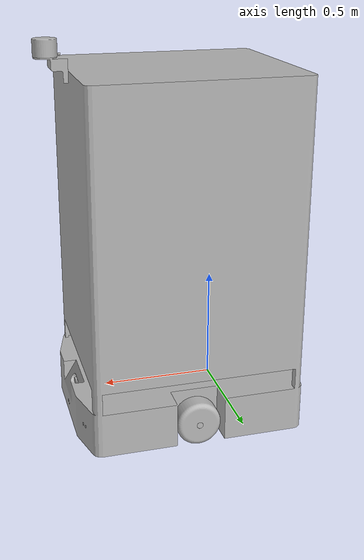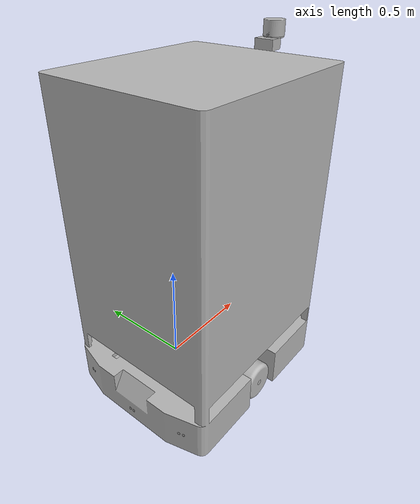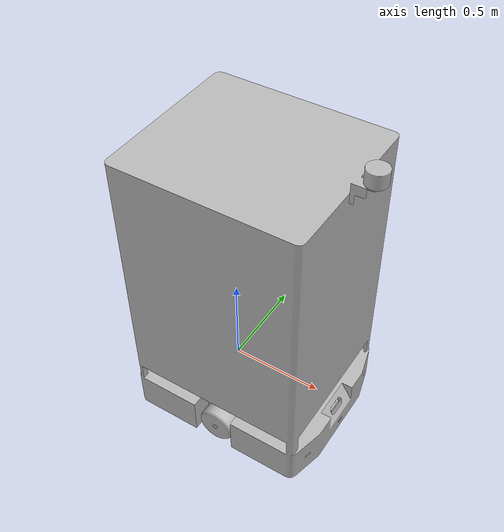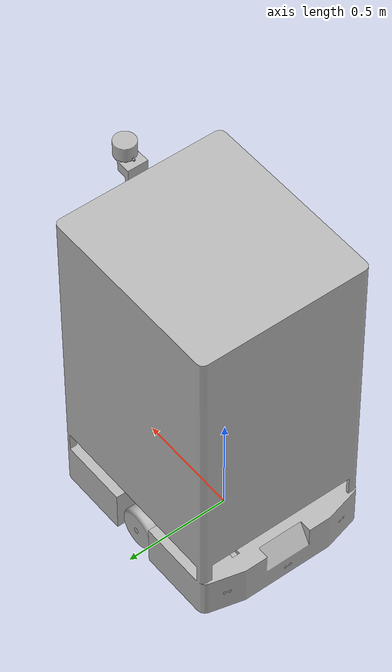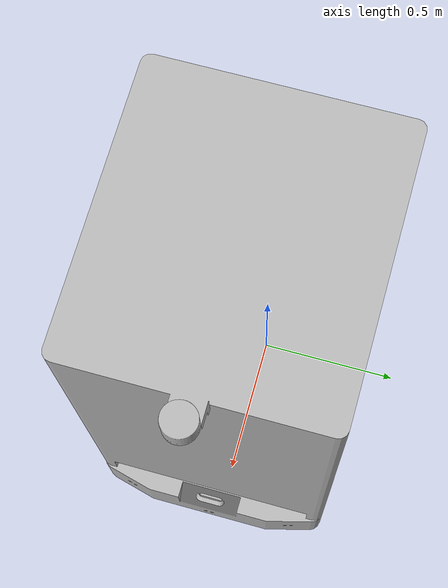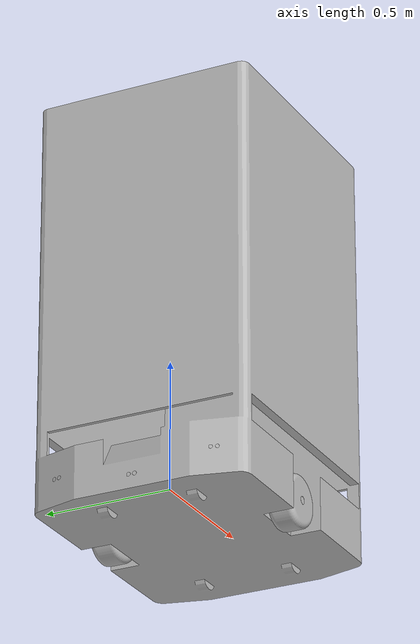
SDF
<?xml version="1.0" ?>
<sdf version="1.4">
  <model name="bot_agv5">

    <link name="base_footprint"/>

        <joint name="base_joint" type="fixed">
          <parent>base_footprint</parent>
          <child>base_link</child>
          <pose>0 0 0 0 0 0</pose>
        </joint>

    <link name='base_link'>
      <inertial>
        <mass>288.88</mass>
        <pose>0.4493 0.836784 0.846149 0 -0 0</pose>
        <inertia>
          <ixx>44.848</ixx>
          <ixy>-0.16219</ixy>
          <ixz>0.0078397</ixz>
          <iyy>53.3</iyy>
          <iyz>-0.0015458</iyz>
          <izz>49.091</izz>
        </inertia>
      </inertial>
      <collision name='base_link_collision'>
        <pose>-0.3 0.8 -0.5 0 -0 0</pose>
        <geometry>
          <mesh>
            <scale>1 1 1</scale>
            <uri>model://bot_agv5/meshes/base_link.STL</uri>
          </mesh>
        </geometry>
      </collision>

      <visual name='base_link_visual'>
        <pose>-0.3 0.8 -0.5 0 -0 0</pose>
        <geometry>
          <mesh>
            <scale>1 1 1</scale>
            <uri>model://bot_agv5/meshes/base_link.STL</uri>
          </mesh>
        </geometry>
      </visual>
       </link>

       <link name="sensor_one">
        <inertial>
          <pose>-0.011509 -7.9086E-05 0.014139 0 0 0</pose>
          <mass>0.0062193</mass>
          <inertia>
            <ixx>2.1694E-07</ixx>
            <ixy>1.2249E-09</ixy>
            <ixz>-5.1946E-14</ixz>
            <iyy>9.8554E-07</iyy>
            <iyz>2.2269E-09</iyz>
            <izz>1.0096E-06</izz>
          </inertia>
        </inertial>

      <collision name='sensor_one_collision'>
        <pose>0.65093 -0.03366 -0.0928 1.5708 -0 1.5708</pose>
        <geometry>
          <mesh>
            <scale>1 1 1</scale>
            <uri>model://bot_agv5/meshes/sensor_one.STL</uri>
          </mesh>
        </geometry>
      </collision>

      <visual name='sensor_one_visual'>
        <pose>0.65093 -0.03366 -0.0928 1.5708 -0 1.5708</pose>
        <geometry>
          <mesh>
            <scale>1 1 1</scale>
            <uri>model://bot_agv5/meshes/sensor_one.STL</uri>
          </mesh>
        </geometry>
      </visual>
       </link>
      <!-- Joint connecting base_link to sensor_one -->
      <joint name="front_one_joint" type="fixed">
        <parent>base_link</parent>
        <child>sensor_one</child>
        <pose>0.65093 -0.03366 -0.0928 0 0 0</pose>
      </joint>

      <link name="sensor_two">
        <inertial>
          <pose>-0.011509 -7.9086E-05 0.014139 0 0 0</pose>
          <mass>0.0062193</mass>
          <inertia>
            <ixx>2.1694E-07</ixx>
            <ixy>1.2249E-09</ixy>
            <ixz>-5.1946E-14</ixz>
            <iyy>9.8554E-07</iyy>
            <iyz>2.2269E-09</iyz>
            <izz>1.0096E-06</izz>
          </inertia>
        </inertial>

      <collision name='sensor_two_collision'>
        <pose>0.64019 -0.3492 -0.0427 1.5708 -0 1.3198</pose>
        <geometry>
          <mesh>
            <scale>1 1 1</scale>
            <uri>model://bot_agv5/meshes/sensor_two.STL</uri>
          </mesh>
        </geometry>
      </collision>

      <visual name='sensor_two_visual'>
        <pose>0.64019 -0.3492 -0.0427 1.5708 -0 1.3198</pose>
        <geometry>
          <mesh>
            <scale>1 1 1</scale>
            <uri>model://bot_agv5/meshes/sensor_two.STL</uri>
          </mesh>
        </geometry>
      </visual>
      </link>
      <!-- Joint connecting base_link to sensor_two -->
      <joint name="front_two_joint" type="fixed">
         <parent>base_link</parent>
         <child>sensor_two</child>
         <pose>0.64019 -0.3492 -0.0427 0 0 0</pose>
      </joint>

      <link name="sensor_three">
        <inertial>
          <pose>-0.011509 -7.9086E-05 0.014139 0 0 0</pose>
          <mass>0.0062193</mass>
          <inertia>
            <ixx>2.1694E-07</ixx>
            <ixy>1.2249E-09</ixy>
            <ixz>-5.1946E-14</ixz>
            <iyy>9.8554E-07</iyy>
            <iyz>2.2269E-09</iyz>
            <izz>1.0096E-06</izz>
          </inertia>
        </inertial>
      <collision name='sensor_three_collision'>
        <pose>0.63474 0.2451 -0.0428 1.5708 0 1.8218</pose>
        <geometry>
          <mesh>
            <scale>1 1 1</scale>
            <uri>model://bot_agv5/meshes/sensor_three.STL</uri>
          </mesh>
        </geometry>
      </collision>

      <visual name='sensor_three_visual'>
        <pose>0.63474 0.2451 -0.0428 1.5708 0 1.8218</pose>
        <geometry>
          <mesh>
            <scale>1 1 1</scale>
            <uri>model://bot_agv5/meshes/sensor_three.STL</uri>
          </mesh>
        </geometry>
      </visual>
      </link>
      <!-- Joint connecting base_link to sensor_three -->
      <joint name="front_three_joint" type="fixed">
         <parent>base_link</parent>
         <child>sensor_three</child>
         <pose>0.63474 0.2451 -0.0428 0 0 0</pose>
      </joint>

      <link name="sensor_four">
        <inertial>
          <pose>-0.011509 -7.9086E-05 0.014139 0 0 0</pose>
          <mass>0.0062193</mass>
          <inertia>
            <ixx>2.1694E-07</ixx>
            <ixy>1.2249E-09</ixy>
            <ixz>-5.1946E-14</ixz>
            <iyy>9.8554E-07</iyy>
            <iyz>2.2269E-09</iyz>
            <izz>1.0096E-06</izz>
          </inertia>
        </inertial>

      <collision name='sensor_four_collision_2'>
        <pose>-0.355584 -0.03366 -0.0928 -1.5708 -0 -1.5708</pose>
        <geometry>
          <mesh>
            <scale>1 1 1</scale>
            <uri>model://bot_agv5/meshes/sensor_four.STL</uri>
          </mesh>
        </geometry>
      </collision>

      <visual name='sensor_four_visual'>
        <pose>-0.355584 -0.03366 -0.0928 -1.5708 -0 -1.5708</pose>
        <geometry>
          <mesh>
            <scale>1 1 1</scale>
            <uri>model://bot_agv5/meshes/sensor_four.STL</uri>
          </mesh>
        </geometry>
      </visual>
      </link>
      <!-- Joint connecting base_link to sensor_four -->
      <joint name="back_four_joint" type="fixed">
         <parent>base_link</parent>
         <child>sensor_four</child>
         <pose>-0.355584 -0.03366 -0.0928 0 0 0</pose>
      </joint>

      <link name="sensor_five">
        <inertial>
          <pose>-0.011509 -7.9086E-05 0.014139 0 0 0</pose>
          <mass>0.0062193</mass>
          <inertia>
            <ixx>2.1694E-07</ixx>
            <ixy>1.2249E-09</ixy>
            <ixz>-5.1946E-14</ixz>
            <iyy>9.8554E-07</iyy>
            <iyz>2.2269E-09</iyz>
            <izz>1.0096E-06</izz>
          </inertia>
        </inertial>

      <collision name='sensor_five_collision'>
        <pose>-0.344519 0.25883 -0.0428 1.5708 -0 -1.8218</pose>
        <geometry>
          <mesh>
            <scale>1 1 1</scale>
            <uri>model://bot_agv5/meshes/sensor_five.STL</uri>
          </mesh>
        </geometry>
      </collision>

      <visual name='sensor_five_visual'>
        <pose>-0.344519 0.25883 -0.0428 1.5708 -0 -1.8218</pose>
        <geometry>
          <mesh>
            <scale>1 1 1</scale>
            <uri>model://bot_agv5/meshes/sensor_five.STL</uri>
          </mesh>
        </geometry>
      </visual>
      </link>

      <!-- Joint connecting base_link to sensor_five -->
      <joint name="back_five_joint" type="fixed">
         <parent>base_link</parent>
         <child>sensor_five</child>
         <pose>-0.344519 0.25883 -0.0428 0 0 0</pose>
      </joint>

      <link name="sensor_six">
        <inertial>
          <pose>-0.011509 -7.9086E-05 0.014139 0 0 0</pose>
          <mass>0.0062193</mass>
          <inertia>
            <ixx>2.1694E-07</ixx>
            <ixy>1.2249E-09</ixy>
            <ixz>-5.1946E-14</ixz>
            <iyy>9.8554E-07</iyy>
            <iyz>2.2269E-09</iyz>
            <izz>1.0096E-06</izz>
          </inertia>
        </inertial>

      <collision name='sensor_six_collision'>
        <pose>-0.344519 -0.3501 -0.0428 1.5708 -0 -1.3198</pose>
        <geometry>
          <mesh>
            <scale>1 1 1</scale>
            <uri>model://bot_agv5/meshes/sensor_six.STL</uri>
          </mesh>
        </geometry>
      </collision>

      <visual name='sensor_six_visual'>
        <pose>-0.344519 -0.3501 -0.0428 1.5708 -0 -1.3198</pose>
        <geometry>
          <mesh>
            <scale>1 1 1</scale>
            <uri>model://bot_agv5/meshes/sensor_six.STL</uri>
          </mesh>
        </geometry>
      </visual>
      </link>

      <!-- Joint connecting base_link to sensor_six -->
     <joint name="back_six_joint" type="fixed">
        <parent>base_link</parent>
        <child>sensor_six</child>
        <pose>-0.344519 -0.3501 -0.0428 0 0 0</pose>
     </joint>

     <link name="camera_link">
      <inertial>
        <pose>1.1443E-05 -0.00013623 0.011556 0 0 0</pose>
        <mass>0.10791</mass>
        <inertia>
          <ixx>7.7099E-06</ixx>
          <ixy>-2.7921E-10</ixy>
          <ixz>-1.7968E-08</ixz>
          <iyy>7.0256E-05</iyy>
          <iyz>4.9369E-08</iyz>
          <izz>7.1254E-05</izz>
        </inertia>
      </inertial>
      <collision name='camera_link_collision'>
        <pose>0.61315 -0.04578 -0.00105 1.4667 -0 1.5708</pose>
        <geometry>
          <mesh>
            <scale>1 1 1</scale>
            <uri>model://bot_agv5/meshes/camera_link.STL</uri>
          </mesh>
        </geometry>
      </collision>

      <visual name='camera_link_visual'>
        <pose>0.61315 -0.04578 -0.00105 1.4667 -0 1.5708</pose>
        <geometry>
          <mesh>
            <scale>1 1 1</scale>
            <uri>model://bot_agv5/meshes/camera_link.STL</uri>
          </mesh>
        </geometry>
      </visual>
      </link>

      <!-- Joint connecting base_link to camera_link -->
      <joint name="camera_joint" type="fixed">
        <pose>0.61315 -0.04578 -0.00105 0 0 0</pose>
        <parent>base_link</parent>
        <child>camera_link</child>
        <axis>
          <xyz>0 0 0</xyz>
        </axis>
      </joint>

      <link name="laser_link">
        <inertial>
          <mass>0.60561</mass>
          <pose>0.00010213 0.036297 3.2869E-06 0 0 0</pose>
          <inertia>
            <ixx>0.00066704</ixx>
            <ixy>1.8129E-06</ixy>
            <ixz>1.7526E-11</ixz>
            <iyy>0.00080407</iyy>
            <iyz>6.6764E-08</iyz>
            <izz>0.00067092</izz>
          </inertia>
        </inertial>
      <collision name='laser_link_collision'>
        <pose>0.709 -0.04566 1.5197 1.5708 -0 -3.14159</pose>
        <geometry>
          <mesh>
            <scale>1 1 1</scale>
            <uri>model://bot_agv5/meshes/laser_link.STL</uri>
          </mesh>
        </geometry>
      </collision>

      <visual name='laser_link_visual'>
        <pose>0.709 -0.04566 1.5197 1.5708 -0 -3.14159</pose>
        <geometry>
          <mesh>
            <scale>1 1 1</scale>
            <uri>model://bot_agv5/meshes/laser_link.STL</uri>
          </mesh>
        </geometry>
      </visual>
      </link>

      <joint name="lslidar_joint" type="fixed">
        <parent>base_link</parent>
        <child>laser_link</child>
        <pose>0.709 -0.04566 1.5197 0 0 0</pose>
      </joint>

    <joint name='wheel_left_joint' type='revolute'>
      <pose relative_to='base_link'>0.14771 -0.3482 -0.0703 0 -0 0</pose>
      <parent>base_footprint</parent>
      <child>wheel_left_link</child>
      <axis>
        <xyz>0 1 0</xyz>
        <limit>
          <lower>-1e+16</lower>
          <upper>1e+16</upper>
        </limit>
        <dynamics>
          <spring_reference>0</spring_reference>
          <spring_stiffness>0</spring_stiffness>
        </dynamics>
      </axis>
    </joint>
    <link name='wheel_left_link'>
      <pose relative_to='wheel_left_joint'>0 0 0 0 -0 0</pose>
      <inertial>
        <pose>0 0 0.05 0 -0 0</pose>
        <mass>2.9679</mass>
        <inertia>
          <ixx>0.0097224</ixx>
          <ixy>-2.1684e-19</ixy>
          <ixz>-1.6122e-19</ixz>
          <iyy>0.0097224</iyy>
          <iyz>1.7156e-20</iyz>
          <izz>0.014755</izz>
        </inertia>
      </inertial>
      <collision name='wheel_left_link_collision'>
        <pose>0 0 0 -1.5708 0.21783 -3.1416</pose>
        <geometry>
          <mesh>
            <scale>1 1 1</scale>
            <uri>model://bot_agv5/meshes/wheel_left_link.STL</uri>
          </mesh>
        </geometry>
      </collision>
      <visual name='wheel_left_link_visual'>
        <pose>0 0 0 -1.5708 0.21783 -3.1416</pose>
        <geometry>
          <mesh>
            <scale>1 1 1</scale>
            <uri>model://bot_agv5/meshes/wheel_left_link.STL</uri>
          </mesh>
        </geometry>
      </visual>
    </link>
    <joint name='wheel_right_joint' type='revolute'>
      <pose relative_to='base_link'>0.14771 0.35684 -0.0703 0 -0 0</pose>
      <parent>base_footprint</parent>
      <child>wheel_right_link</child>
      <axis>
        <xyz>0 1 0</xyz>
        <limit>
          <lower>-1e+16</lower>
          <upper>1e+16</upper>
        </limit>
        <dynamics>
          <spring_reference>0</spring_reference>
          <spring_stiffness>0</spring_stiffness>
        </dynamics>
      </axis>
    </joint>
    <link name='wheel_right_link'>
      <pose relative_to='wheel_right_joint'>0 0 0 0 -0 0</pose>
      <inertial>
        <pose>0 -0 0.05 0 -0 0</pose>
        <mass>2.9679</mass>
        <inertia>
          <ixx>0.0097224</ixx>
          <ixy>-6.074e-38</ixy>
          <ixz>0</ixz>
          <iyy>0.0097224</iyy>
          <iyz>-1.6088e-35</iyz>
          <izz>0.014755</izz>
        </inertia>
      </inertial>
      <collision name='wheel_right_link_collision'>
        <pose>0 0 0 1.5708 -0 0</pose>
        <geometry>
          <mesh>
            <scale>1 1 1</scale>
            <uri>model://bot_agv5/meshes/wheel_right_link.STL</uri>
          </mesh>
        </geometry>
      </collision>
      <visual name='wheel_right_link_visual'>
        <pose>0 0 0 1.5708 -0 0</pose>
        <geometry>
          <mesh>
            <scale>1 1 1</scale>
            <uri>model://bot_agv5/meshes/wheel_right_link.STL</uri>
          </mesh>
        </geometry>
      </visual>
    </link>

    <link name='imu_link'>
      <inertial>
        <pose>-0.0184 0.0275 -0.012 0 0 0</pose>
        <mass>0.048576</mass>
        <inertia>
          <ixx>1.4577E-05</ixx>
          <ixy>3.3007E-20</ixy>
          <ixz>-2.8462E-20</ixz>
          <iyy>7.8136E-06</iyy>
          <iyz>2.1514E-19</iyz>
          <izz>1.7727E-05</izz>
        </inertia>
      </inertial>
      <visual name="imu_visual">
      <pose>-0.289788 0.18274 0.0147 3.14159 0 1.5708</pose>
      <geometry>
        <mesh>
          <scale>1 1 1</scale>
          <uri>model://bot_agv5/meshes/imu_link.STL</uri>
        </mesh>
      </geometry>
    </visual>
    <collision name="imu_collision">
      <pose>-0.289788 0.18274 0.0147 3.14159 0 1.5708</pose>
      <geometry>
        <mesh>
          <scale>1 1 1</scale>
          <uri>model://bot_agv5/meshes/imu_link.STL</uri>
        </mesh>
      </geometry>
    </collision>
    <sensor name="agv_imu" type="imu">
      <always_on>true</always_on>
      <update_rate>200</update_rate>
      <imu>
        <angular_velocity>
          <x>
            <noise type="gaussian">
              <mean>0.0</mean>
              <stddev>2e-4</stddev>
            </noise>
          </x>
          <y>
            <noise type="gaussian">
              <mean>0.0</mean>
              <stddev>2e-4</stddev>
            </noise>
          </y>
          <z>
            <noise type="gaussian">
              <mean>0.0</mean>
              <stddev>2e-4</stddev>
            </noise>
          </z>
        </angular_velocity>
        <linear_acceleration>
          <x>
            <noise type="gaussian">
              <mean>0.0</mean>
              <stddev>1.7e-2</stddev>
            </noise>
          </x>
          <y>
            <noise type="gaussian">
              <mean>0.0</mean>
              <stddev>1.7e-2</stddev>
            </noise>
          </y>
          <z>
            <noise type="gaussian">
              <mean>0.0</mean>
              <stddev>1.7e-2</stddev>
            </noise>
          </z>
        </linear_acceleration>
      </imu>
      <plugin name="bot_imu" filename="libgazebo_ros_imu_sensor.so">
        <ros>
          <remapping>~/out:=imu</remapping>
        </ros>
      </plugin>
    </sensor>
  </link>

    <joint name="imu_joint" type="fixed">
      <pose relative_to="base_link">-0.289788 0.18274 0.0147 3.14159 0 1.5708</pose>
       <parent>base_link</parent>
       <child>imu_link</child>
     <axis>
      <xyz>0 0 1</xyz>
     </axis>
   </joint>

   <link name='laser'>
    <inertial>
      <mass>0.16307</mass>
      <pose>0.00025711 -0.019085 -0.00093411 0 0 0</pose>
      <inertia>
        <ixx>6.0437E-05</ixx>
        <ixy>-6.5608E-08</ixy>
        <ixz>-1.1037E-07</ixz>
        <iyy>0.00010759</iyy>
        <iyz>2.3216E-07</iyz>
        <izz>6.0727E-05</izz>
      </inertia>
    </inertial>
    <visual name="laser_visual">
    <pose>0.14756 -0.04551 0.0627 -1.5708 -0 -1.5708</pose>
    <geometry>
      <mesh>
        <scale>1 1 1</scale>
        <uri>model://bot_agv5/meshes/laser.STL</uri>
      </mesh>
    </geometry>
  </visual>

  <collision name="laser_collision">
    <pose>0.14756 -0.04551 0.0627 -1.5708 -0 -1.5708</pose>
    <geometry>
      <mesh>
        <scale>1 1 1</scale>
        <uri>model://bot_agv5/meshes/laser.STL</uri>
      </mesh>
    </geometry>
  </collision>
  <sensor name="lidar" type="ray">
    <always_on>true</always_on>
    <visualize>false</visualize>
    <pose>0.14756 -0.04551 0.0627 0 0 0</pose>
    <update_rate>5</update_rate>
    <ray>
      <scan>
        <horizontal>
          <samples>360</samples>
          <resolution>1.000000</resolution>
          <min_angle>0.0000</min_angle>
          <max_angle>6.280000</max_angle>
        </horizontal>
      </scan>
      <range>
        <min>0.20000</min>
        <max>25.0</max>
        <resolution>0.015000</resolution>
      </range>
      <noise>
        <type>gaussian</type>
        <mean>0.0</mean>
        <stddev>0.01</stddev>
      </noise>
    </ray>
    <plugin name="agv2_laserscan" filename="libgazebo_ros_ray_sensor.so">
      <ros>
        <remapping>~/out:=scan</remapping>
      </ros>
      <output_type>sensor_msgs/LaserScan</output_type>
      <frame_name>laser</frame_name>
    </plugin>
  </sensor>
   </link>

   <joint name="rplidar_joint" type="fixed">
    <pose relative_to="base_link">0.14756 -0.04551 0.0627 -1.5708 -0 -1.5708</pose>
     <parent>base_link</parent>
     <child>laser</child>
   <axis>
    <xyz>0 0 1</xyz>
   </axis>
 </joint>

    <plugin name="agv_diff_drive" filename="libgazebo_ros_diff_drive.so">

      <ros>
      </ros>

      <update_rate>30</update_rate>

      <!-- wheels -->
      <left_joint>wheel_left_joint</left_joint>
      <right_joint>wheel_right_joint</right_joint>

      <!-- kinematics -->
      <wheel_separation>0.605</wheel_separation>
      <wheel_diameter>0.2</wheel_diameter>

      <!-- limits -->
      <max_wheel_torque>20</max_wheel_torque>
      <max_wheel_acceleration>1.0</max_wheel_acceleration>

      <command_topic>cmd_vel</command_topic>

      <!-- output -->
      <publish_odom>true</publish_odom>
      <publish_odom_tf>true</publish_odom_tf>
      <publish_wheel_tf>false</publish_wheel_tf>

      <odometry_topic>odom</odometry_topic>
      <odometry_frame>odom</odometry_frame>
      <robot_base_frame>base_footprint</robot_base_frame>

    </plugin>

    <plugin name="agv_joint_state" filename="libgazebo_ros_joint_state_publisher.so">
      <ros>
        <remapping>~/out:=joint_states</remapping>
      </ros>
      <update_rate>30</update_rate>
      <joint_name>wheel_left_joint</joint_name>
      <joint_name>wheel_right_joint</joint_name>
    </plugin>

  </model>
</sdf>
